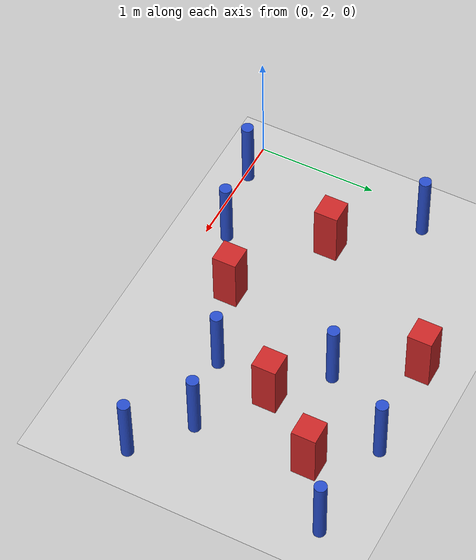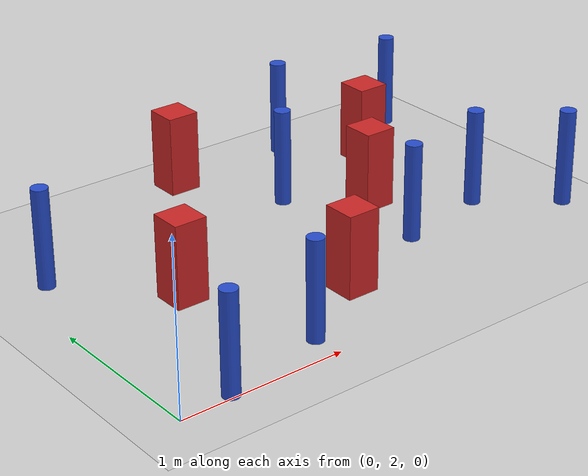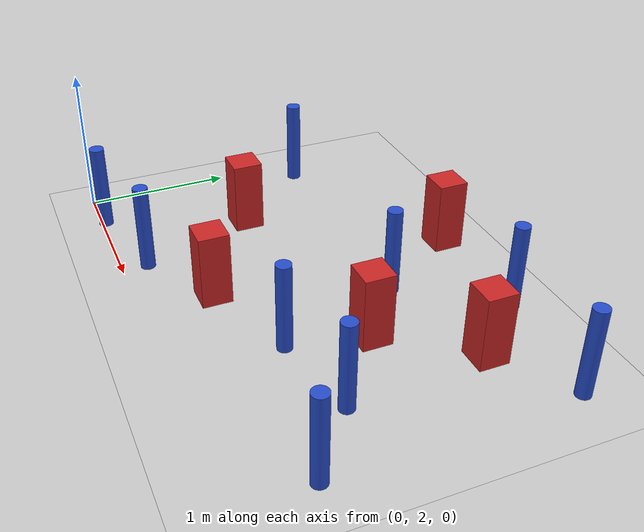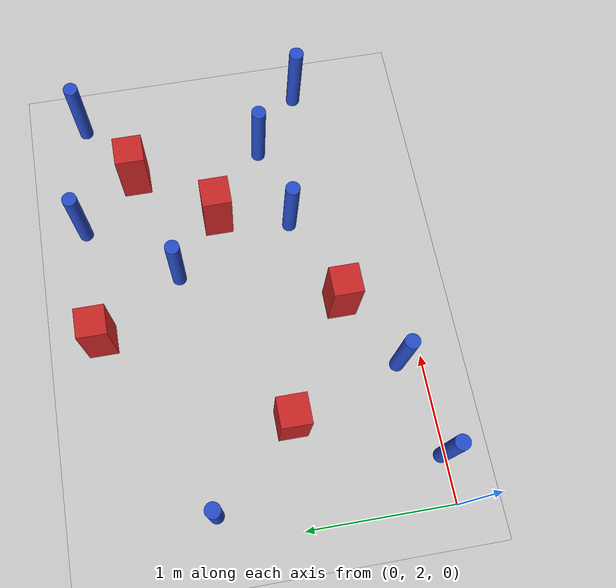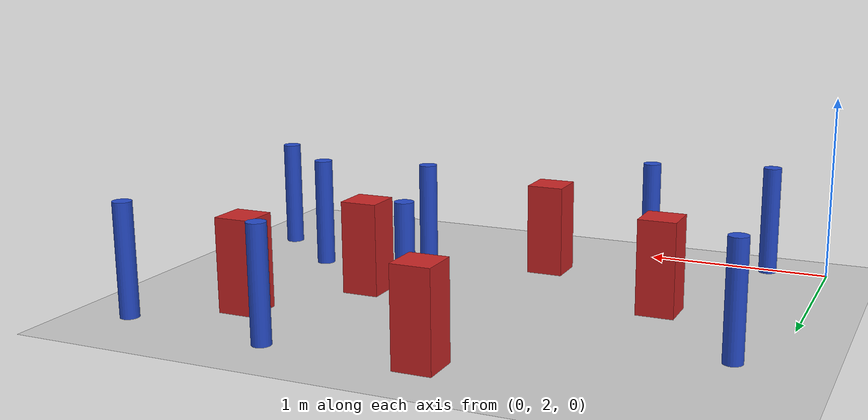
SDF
<sdf version="1.6">
 <world name="default">
  <model name="ground_plane">
   <static>1</static>
   <link name="link">
    <collision name="collision">
     <geometry><plane><normal>0 0 1</normal><size>100 100</size></plane></geometry>
     <surface><friction><ode><mu>100</mu><mu2>50</mu2></ode></friction></surface>
    </collision>
    <visual name="visual">
     <cast_shadows>0</cast_shadows>
     <geometry><plane><normal>0 0 1</normal><size>100 100</size></plane></geometry>
     <material>
      <ambient>1.0 1.0 1.0 1.0</ambient>
      <diffuse>0.8 0.8 0.8 1.0</diffuse>
      <specular>0.01 0.01 0.01 1.000000</specular>
     </material>
    </visual>
   </link>
  </model>
  <model name="pole_obstacle3">
   <static>true</static>
   <pose>3.14973722396 2.48802405268 -3.09024884793e-07 -7.19054271912e-07 -2.11315075144e-07 -1.93935509271e-07</pose>
   <link name="link">
    <pose>0 0 0.3 0 -0 0</pose>
    <inertial>
     <mass>1</mass>
     <inertia><ixx>0.145833</ixx><ixy>0</ixy><ixz>0</ixz><iyy>0.145833</iyy><iyz>0</iyz><izz>0.125</izz></inertia>
    </inertial>
    <collision name="collision">
     <geometry><cylinder><radius>0.05</radius><length>.6</length></cylinder></geometry>
    </collision>
    <visual name="visual">
     <geometry><cylinder><radius>0.05</radius><length>.6</length></cylinder></geometry>
     <material>
      <script><name>Gazebo/Blue</name><uri>file://media/materials/scripts/gazebo.material</uri></script>
     </material>
    </visual>
   </link>
  </model>
  <model name="pole_obstacle18">
   <static>true</static>
   <pose>2.12176368627 2.70748521758 -3.09024884793e-07 -7.19054271912e-07 -2.11315075144e-07 -1.93935509271e-07</pose>
   <link name="link">
    <pose>0 0 0.3 0 -0 0</pose>
    <inertial>
     <mass>1</mass>
     <inertia><ixx>0.145833</ixx><ixy>0</ixy><ixz>0</ixz><iyy>0.145833</iyy><iyz>0</iyz><izz>0.125</izz></inertia>
    </inertial>
    <collision name="collision">
     <geometry><cylinder><radius>0.05</radius><length>.6</length></cylinder></geometry>
    </collision>
    <visual name="visual">
     <geometry><cylinder><radius>0.05</radius><length>.6</length></cylinder></geometry>
     <material>
      <script><name>Gazebo/Blue</name><uri>file://media/materials/scripts/gazebo.material</uri></script>
     </material>
    </visual>
   </link>
  </model>
  <model name="pole_obstacle48">
   <static>true</static>
   <pose>2.72687363572 2.83181015 -3.09024884793e-07 -7.19054271912e-07 -2.11315075144e-07 -1.93935509271e-07</pose>
   <link name="link">
    <pose>0 0 0.3 0 -0 0</pose>
    <inertial>
     <mass>1</mass>
     <inertia><ixx>0.145833</ixx><ixy>0</ixy><ixz>0</ixz><iyy>0.145833</iyy><iyz>0</iyz><izz>0.125</izz></inertia>
    </inertial>
    <collision name="collision">
     <geometry><cylinder><radius>0.05</radius><length>.6</length></cylinder></geometry>
    </collision>
    <visual name="visual">
     <geometry><cylinder><radius>0.05</radius><length>.6</length></cylinder></geometry>
     <material>
      <script><name>Gazebo/Blue</name><uri>file://media/materials/scripts/gazebo.material</uri></script>
     </material>
    </visual>
   </link>
  </model>
  <model name="pole_obstacle73">
   <static>true</static>
   <pose>0.191014216348 3.54210844667 -3.09024884793e-07 -7.19054271912e-07 -2.11315075126e-07 -1.9393550926e-07</pose>
   <link name="link">
    <pose>0 0 0.3 0 -0 0</pose>
    <inertial>
     <mass>1</mass>
     <inertia><ixx>0.145833</ixx><ixy>0</ixy><ixz>0</ixz><iyy>0.145833</iyy><iyz>0</iyz><izz>0.125</izz></inertia>
    </inertial>
    <collision name="collision">
     <geometry><cylinder><radius>0.05</radius><length>.6</length></cylinder></geometry>
    </collision>
    <visual name="visual">
     <geometry><cylinder><radius>0.05</radius><length>.6</length></cylinder></geometry>
     <material>
      <script><name>Gazebo/Blue</name><uri>file://media/materials/scripts/gazebo.material</uri></script>
     </material>
    </visual>
   </link>
  </model>
  <model name="pole_obstacle77">
   <static>true</static>
   <pose>3.1286048756 4.08764542754 -3.09024884793e-07 -7.19054271912e-07 -2.11315075134e-07 -1.93935509266e-07</pose>
   <link name="link">
    <pose>0 0 0.3 0 -0 0</pose>
    <inertial>
     <mass>1</mass>
     <inertia><ixx>0.145833</ixx><ixy>0</ixy><ixz>0</ixz><iyy>0.145833</iyy><iyz>0</iyz><izz>0.125</izz></inertia>
    </inertial>
    <collision name="collision">
     <geometry><cylinder><radius>0.05</radius><length>.6</length></cylinder></geometry>
    </collision>
    <visual name="visual">
     <geometry><cylinder><radius>0.05</radius><length>.6</length></cylinder></geometry>
     <material>
      <script><name>Gazebo/Blue</name><uri>file://media/materials/scripts/gazebo.material</uri></script>
     </material>
    </visual>
   </link>
  </model>
  <model name="square_post_obstacle86">
   <static>true</static>
   <pose>0.694363843619 2.96439745133 -4.36207812815e-07 3.75137919937e-06 9.77721102514e-07 2.47381364184e-05</pose>
   <link name="link">
    <pose>0 0 0.25 0 -0 0</pose>
    <inertial>
     <mass>100</mass>
     <inertia>
      <ixx>0.166667</ixx>
      <ixy>0</ixy>
      <ixz>0</ixz>
      <iyy>0.166667</iyy>
      <iyz>0</iyz>
      <izz>0.166667</izz>
     </inertia>
    </inertial>
    <collision name="collision"><geometry><box><size>.2 .2 .5</size></box></geometry></collision>
    <visual name="visual">
     <geometry><box><size>.2 .2 .5</size></box></geometry>
     <material>
      <script><name>Gazebo/Red</name><uri>file://media/materials/scripts/gazebo.material</uri></script>
     </material>
    </visual>
   </link>
  </model>
  <model name="square_post_obstacle111">
   <static>true</static>
   <pose>2.65095305907 3.75799540719 -4.36207812815e-07 3.75137919937e-06 9.77721102514e-07 2.47381364184e-05</pose>
   <link name="link">
    <pose>0 0 0.25 0 -0 0</pose>
    <inertial>
     <mass>100</mass>
     <inertia>
      <ixx>0.166667</ixx>
      <ixy>0</ixy>
      <ixz>0</ixz>
      <iyy>0.166667</iyy>
      <iyz>0</iyz>
      <izz>0.166667</izz>
     </inertia>
    </inertial>
    <collision name="collision"><geometry><box><size>.2 .2 .5</size></box></geometry></collision>
    <visual name="visual">
     <geometry><box><size>.2 .2 .5</size></box></geometry>
     <material>
      <script><name>Gazebo/Red</name><uri>file://media/materials/scripts/gazebo.material</uri></script>
     </material>
    </visual>
   </link>
  </model>
  <model name="square_post_obstacle133">
   <static>true</static>
   <pose>1.47053824098 2.4731148796 -4.36207812815e-07 3.75137919937e-06 9.77721102514e-07 2.47381364184e-05</pose>
   <link name="link">
    <pose>0 0 0.25 0 -0 0</pose>
    <inertial>
     <mass>100</mass>
     <inertia>
      <ixx>0.166667</ixx>
      <ixy>0</ixy>
      <ixz>0</ixz>
      <iyy>0.166667</iyy>
      <iyz>0</iyz>
      <izz>0.166667</izz>
     </inertia>
    </inertial>
    <collision name="collision"><geometry><box><size>.2 .2 .5</size></box></geometry></collision>
    <visual name="visual">
     <geometry><box><size>.2 .2 .5</size></box></geometry>
     <material>
      <script><name>Gazebo/Red</name><uri>file://media/materials/scripts/gazebo.material</uri></script>
     </material>
    </visual>
   </link>
  </model>
  <model name="pole_obstacle146">
   <static>true</static>
   <pose>0.322951679469 2.02812886766 -3.09024884793e-07 -7.19054271912e-07 -2.11315075132e-07 -1.93935509264e-07</pose>
   <link name="link">
    <pose>0 0 0.3 0 -0 0</pose>
    <inertial>
     <mass>1</mass>
     <inertia><ixx>0.145833</ixx><ixy>0</ixy><ixz>0</ixz><iyy>0.145833</iyy><iyz>0</iyz><izz>0.125</izz></inertia>
    </inertial>
    <collision name="collision">
     <geometry><cylinder><radius>0.05</radius><length>.6</length></cylinder></geometry>
    </collision>
    <visual name="visual">
     <geometry><cylinder><radius>0.05</radius><length>.6</length></cylinder></geometry>
     <material>
      <script><name>Gazebo/Blue</name><uri>file://media/materials/scripts/gazebo.material</uri></script>
     </material>
    </visual>
   </link>
  </model>
  <model name="pole_obstacle152">
   <static>true</static>
   <pose>1.84183288407 3.55276306457 -3.09024884793e-07 -7.19054271912e-07 -2.11315075132e-07 -1.93935509263e-07</pose>
   <link name="link">
    <pose>0 0 0.3 0 -0 0</pose>
    <inertial>
     <mass>1</mass>
     <inertia><ixx>0.145833</ixx><ixy>0</ixy><ixz>0</ixz><iyy>0.145833</iyy><iyz>0</iyz><izz>0.125</izz></inertia>
    </inertial>
    <collision name="collision">
     <geometry><cylinder><radius>0.05</radius><length>.6</length></cylinder></geometry>
    </collision>
    <visual name="visual">
     <geometry><cylinder><radius>0.05</radius><length>.6</length></cylinder></geometry>
     <material>
      <script><name>Gazebo/Blue</name><uri>file://media/materials/scripts/gazebo.material</uri></script>
     </material>
    </visual>
   </link>
  </model>
  <model name="pole_obstacle179">
   <static>true</static>
   <pose>2.29151788511 4.17189401148 -3.09024884793e-07 -7.19054271912e-07 -2.11315075134e-07 -1.93935509266e-07</pose>
   <link name="link">
    <pose>0 0 0.3 0 -0 0</pose>
    <inertial>
     <mass>1</mass>
     <inertia><ixx>0.145833</ixx><ixy>0</ixy><ixz>0</ixz><iyy>0.145833</iyy><iyz>0</iyz><izz>0.125</izz></inertia>
    </inertial>
    <collision name="collision">
     <geometry><cylinder><radius>0.05</radius><length>.6</length></cylinder></geometry>
    </collision>
    <visual name="visual">
     <geometry><cylinder><radius>0.05</radius><length>.6</length></cylinder></geometry>
     <material>
      <script><name>Gazebo/Blue</name><uri>file://media/materials/scripts/gazebo.material</uri></script>
     </material>
    </visual>
   </link>
  </model>
  <model name="square_post_obstacle179">
   <static>true</static>
   <pose>1.46992413779 4.13880424231 -4.36207812815e-07 3.75137919937e-06 9.77721102514e-07 2.47381364184e-05</pose>
   <link name="link">
    <pose>0 0 0.25 0 -0 0</pose>
    <inertial>
     <mass>100</mass>
     <inertia>
      <ixx>0.166667</ixx>
      <ixy>0</ixy>
      <ixz>0</ixz>
      <iyy>0.166667</iyy>
      <iyz>0</iyz>
      <izz>0.166667</izz>
     </inertia>
    </inertial>
    <collision name="collision"><geometry><box><size>.2 .2 .5</size></box></geometry></collision>
    <visual name="visual">
     <geometry><box><size>.2 .2 .5</size></box></geometry>
     <material>
      <script><name>Gazebo/Red</name><uri>file://media/materials/scripts/gazebo.material</uri></script>
     </material>
    </visual>
   </link>
  </model>
  <model name="square_post_obstacle199">
   <static>true</static>
   <pose>2.23717168236 3.216010356 -4.36207812815e-07 3.75137919937e-06 9.77721102514e-07 2.47381364184e-05</pose>
   <link name="link">
    <pose>0 0 0.25 0 -0 0</pose>
    <inertial>
     <mass>100</mass>
     <inertia>
      <ixx>0.166667</ixx>
      <ixy>0</ixy>
      <ixz>0</ixz>
      <iyy>0.166667</iyy>
      <iyz>0</iyz>
      <izz>0.166667</izz>
     </inertia>
    </inertial>
    <collision name="collision"><geometry><box><size>.2 .2 .5</size></box></geometry></collision>
    <visual name="visual">
     <geometry><box><size>.2 .2 .5</size></box></geometry>
     <material>
      <script><name>Gazebo/Red</name><uri>file://media/materials/scripts/gazebo.material</uri></script>
     </material>
    </visual>
   </link>
  </model>
  <model name="pole_obstacle193">
   <static>true</static>
   <pose>0.971943521817 2.17367636719 -3.09024884793e-07 -7.19054271912e-07 -2.11315075133e-07 -1.93935509265e-07</pose>
   <link name="link">
    <pose>0 0 0.3 0 -0 0</pose>
    <inertial>
     <mass>1</mass>
     <inertia><ixx>0.145833</ixx><ixy>0</ixy><ixz>0</ixz><iyy>0.145833</iyy><iyz>0</iyz><izz>0.125</izz></inertia>
    </inertial>
    <collision name="collision">
     <geometry><cylinder><radius>0.05</radius><length>.6</length></cylinder></geometry>
    </collision>
    <visual name="visual">
     <geometry><cylinder><radius>0.05</radius><length>.6</length></cylinder></geometry>
     <material>
      <script><name>Gazebo/Blue</name><uri>file://media/materials/scripts/gazebo.material</uri></script>
     </material>
    </visual>
   </link>
  </model>
 </world>
</sdf>
